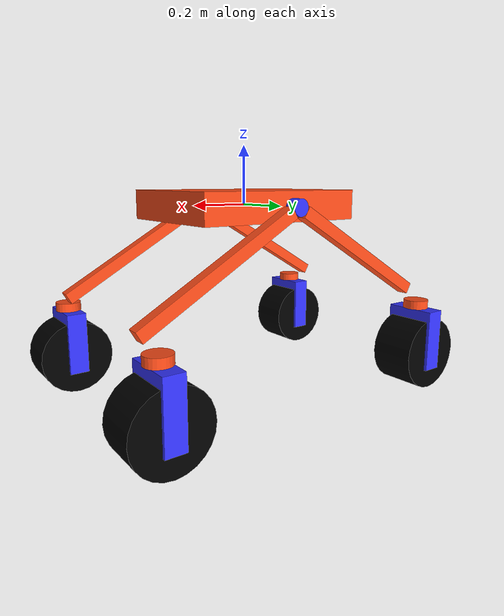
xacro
<?xml version="1.0"?>
<robot xmlns:xacro="http://www.ros.org/wiki/xacro" >

    <xacro:include filename="inertial_macros.xacro"/>

    <xacro:property name="chassis_length" value="0.600"/>
    <xacro:property name="chassis_width" value="0.450"/>
    <xacro:property name="chassis_height" value="0.100"/>
    <xacro:property name="chassis_mass" value="10.0"/>

    <xacro:property name="diff_bar_bearing_seat_width" value="0.04"/>
    <xacro:property name="diff_bar_length" value="0.600"/>

    <xacro:property name="wheel_radius" value="0.033"/>
    <xacro:property name="wheel_thickness" value="0.026"/>
    <xacro:property name="wheel_mass" value="0.05"/>
    <xacro:property name="wheel_offset_x" value="0.226"/>
    <xacro:property name="wheel_offset_y" value="0.3"/>
    <xacro:property name="wheel_offset_z" value="0.01"/>

    <material name="white">
        <color rgba="1 1 1 1" />
    </material>

    <material name="orange">
        <color rgba="1 0.3 0.1 1"/>
    </material>

    <material name="blue">
        <color rgba="0.2 0.2 1 1"/>
    </material>

    <material name="black">
        <color rgba="0 0 0 1"/>
    </material>

    <material name="red">
        <color rgba="1 0 0 1"/>
    </material>

    <!-- BASE LINK -->

    <link name="base_link">
    </link>

    <!-- CHASSIS LINK -->

    <joint name="chassis_joint" type="fixed">
        <parent link="base_link"/>
        <child link="chassis"/>
        <origin xyz="0 0 0"/>
    </joint>

    <link name="chassis">
        <visual>
            <origin xyz="0 0 0"/>
            <geometry>
                <box size="${chassis_length} ${chassis_width} ${chassis_height}"/>
            </geometry>
            <material name="orange"/>
        </visual>
        <xacro:inertial_box mass="15" x="${chassis_length}" y="${chassis_width}" z="${chassis_height}">
            <origin xyz="0 0 0" rpy="0 0 0"/>
        </xacro:inertial_box>
    </link>

    <gazebo reference="chassis">
        <material>Gazebo/Orange</material>
    </gazebo>

    <!-- LEFT SIDE STUFF -->
    <!-- TODO: Fix effort and velocity limits. Current values are arbitrary. -->
    <joint name="ldb_pivot_joint" type="revolute">
        <parent link="chassis"/>
        <child link="ldb_pivot"/>
        <origin xyz="0 ${chassis_width/2 + 0.014 + diff_bar_bearing_seat_width} 0" rpy="-${pi/2} 0 0" />
        <axis xyz="0 0 1"/>
        <limit lower="${-pi/6}" upper="${pi/6}" effort="80.0" velocity="10.0"/>
    </joint>

    <link name="ldb_pivot">
        <visual>
            <geometry>
                <cylinder radius="${0.056/2}" length="${diff_bar_bearing_seat_width}"/>
            </geometry>
            <material name="blue"/>
        </visual>
    </link>

    <xacro:include filename="drivebase/db_helpers.xacro" />
    <xacro:db_module_corner prefix="db_fl" isrear="1" parent="ldb_pivot"/>
    <xacro:db_module_corner prefix="db_bl" isrear="-1" parent="ldb_pivot"/>

    <!-- RIGHT SIDE STUFF -->
    <!-- TODO: Fix effort and velocity limits -->
    <joint name="rdb_pivot_joint" type="continuous">
        <parent link="chassis"/>
        <child link="rdb_pivot"/>
        <origin xyz="0 -${chassis_width/2 + 0.014 + diff_bar_bearing_seat_width} 0" rpy="-${pi/2} 0 0" />
        <axis xyz="0 0 1"/>
        <limit lower="${-pi/6}" upper="${pi/6}" effort="0.0" velocity="0.0"/>
    </joint>

    <link name="rdb_pivot">
        <visual>
            <geometry>
                <cylinder radius="${0.056/2}" length="${diff_bar_bearing_seat_width}"/>
            </geometry>
            <material name="blue"/>
        </visual>
    </link>

    <xacro:db_module_corner prefix="db_fr" isrear="1" flip_x="-1" parent="rdb_pivot"/>
    <xacro:db_module_corner prefix="db_br" isrear="-1" flip_x="-1" parent="rdb_pivot"/>

</robot>

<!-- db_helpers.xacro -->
<robot xmlns:xacro="http://www.ros.org/wiki/xacro" >
    <!-- flipped = -1, normal = 1 for flip_x and isrear -->
    <xacro:macro name="db_module_corner" params="prefix parent flip_x:=1 isrear:=1">
        <joint name="${prefix}_joint" type="fixed">
            <parent link="${parent}"/>
            <child link="${prefix}"/>
            <origin xyz="${isrear*(diff_bar_length/2 + 0.056/2)*cos(pi/6)} ${(diff_bar_length/2 + 0.056/2)*sin(pi/6)} 0" rpy="0 0 ${isrear*pi/6}" />
        </joint>

        <!-- TODO: Fix xyz -->
        <joint name="${prefix}_bar_smount_joint" type="fixed">
            <parent link="${prefix}"/>
            <child link="${prefix}_smount"/>
            <origin xyz="${isrear*diff_bar_length/2} ${0.05} ${(0.0425 + 0.02975)*flip_x}" rpy="${pi/2} 0 ${isrear*(pi/-6)}" />
        </joint>

        <!-- This is the steering joint -->
        <joint name="${prefix}_smount_fork_joint" type="revolute">
            <parent link="${prefix}_smount"/>
            <child link="${prefix}_wheel_fork"/>
            <origin xyz="0 0 ${-0.213/2 - 0.03/2}" rpy="0 0 0" />
            <axis xyz="0 0 1"/>
            <limit lower="${-pi/2}" upper="${pi/2}" effort="40.0" velocity="12.8"/>
        </joint>

        <!-- This is the actual wheel -->
        <joint name="${prefix}_fork_tyre_joint" type="continuous">
            <parent link="${prefix}_wheel_fork"/>
            <child link="${prefix}_tyre"/>
            <origin xyz="0 0 ${-0.05}" rpy="${-pi/2} 0 0" />
            <axis xyz="0 0 1"/>
        </joint>

        <!-- ALL LINKS BELOW THIS LINE -->

        <link name="${prefix}">
            <visual>
                <geometry>
                    <box size="${diff_bar_length} ${diff_bar_bearing_seat_width} ${diff_bar_bearing_seat_width}"/>
                </geometry>
                <material name="orange"/>
            </visual>
            <xacro:inertial_box mass="2" x="${diff_bar_length}" y="${diff_bar_bearing_seat_width}" z="${diff_bar_bearing_seat_width}">
                <origin xyz="0 0 0" rpy="0 0 0"/>
            </xacro:inertial_box>
        </link>

        <!-- Steering mount -->
        <link name="${prefix}_smount">
            <visual>
                <geometry>
                    <cylinder radius="${0.0425}" length="0.03"/>
                </geometry>
                <material name="orange"/>
            </visual>
        </link>

        <!-- The actual steering joint -->
        <link name="${prefix}_wheel_fork">
            <visual>
                <geometry>
                    <box size="0.066 0.170 0.213"/>
                </geometry>
                <material name="blue"/>
            </visual>
            <xacro:inertial_box mass="1" x="0.066" y="0.170" z="0.213">
                <origin xyz="0 0 0" rpy="0 0 0"/>
            </xacro:inertial_box>
        </link>

        <!-- Wheel -->
        <link name="${prefix}_tyre">
            <visual>
                <geometry>
                    <cylinder radius="${0.125}" length="0.150"/>
                </geometry>
                <material name="black"/>
            </visual>
            <collision>
                <geometry>
                    <sphere radius="${0.125}"/>
                </geometry>
            </collision>
            <xacro:inertial_sphere mass="2.5" radius="${0.125}" >
                <origin xyz="0 0 0" rpy="0 0 0"/>
            </xacro:inertial_sphere>
        </link>
    </xacro:macro>
</robot>
